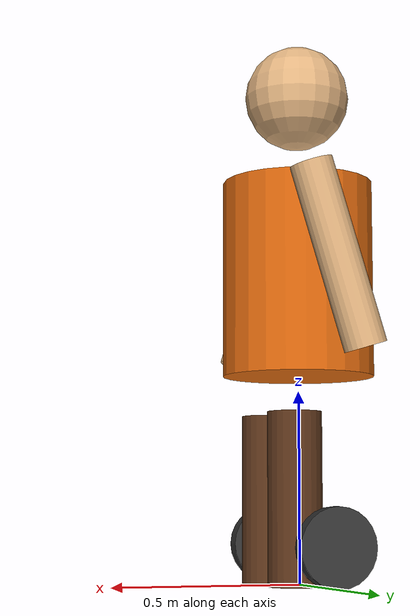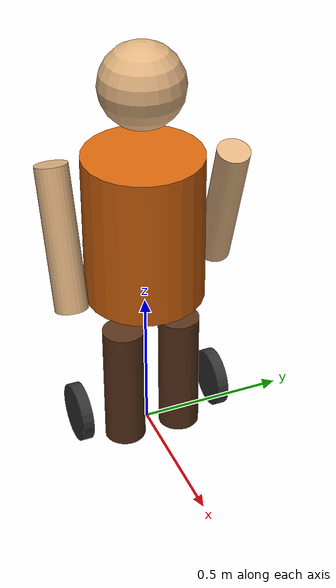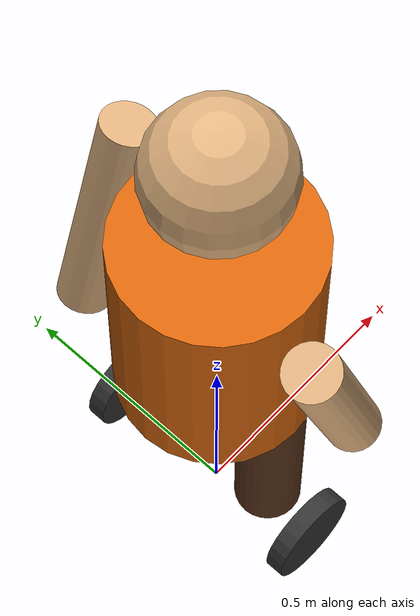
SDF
<?xml version="1.0"?>
<sdf version="1.10">
<model name="random_person">

  <link name="random_person">

    <inertial>
      <pose>0 0 0.90 0 0 0</pose>
      <mass>70.0</mass>
      <inertia>
        <ixx>10.0</ixx><iyy>10.0</iyy><izz>1.5</izz>
        <ixy>0</ixy><ixz>0</ixz><iyz>0</iyz>
      </inertia>
    </inertial>

    <collision name="body_col">
      <pose>0 0 0.90 0 0 0</pose>
      <geometry>
        <cylinder><radius>0.22</radius><length>1.4</length></cylinder>
      </geometry>
    </collision>

    <!-- Torso (orange) -->
    <visual name="torso_vis">
      <pose>0 0 0.80 0 0 0</pose>
      <geometry><cylinder><radius>0.20</radius><length>0.52</length></cylinder></geometry>
      <material><ambient>0.85 0.40 0.05 1</ambient><diffuse>0.85 0.40 0.05 1</diffuse></material>
    </visual>

    <!-- Legs (dark brown) -->
    <visual name="left_leg_vis">
      <pose>0.05 0.10 0.22 0 0 0</pose>
      <geometry><cylinder><radius>0.07</radius><length>0.44</length></cylinder></geometry>
      <material><ambient>0.35 0.20 0.10 1</ambient><diffuse>0.35 0.20 0.10 1</diffuse></material>
    </visual>
    <visual name="right_leg_vis">
      <pose>0.05 -0.10 0.22 0 0 0</pose>
      <geometry><cylinder><radius>0.07</radius><length>0.44</length></cylinder></geometry>
      <material><ambient>0.35 0.20 0.10 1</ambient><diffuse>0.35 0.20 0.10 1</diffuse></material>
    </visual>

    <!-- Arms -->
    <visual name="left_arm_vis">
      <pose>0 0.28 0.82 0 0.3 0</pose>
      <geometry><cylinder><radius>0.055</radius><length>0.48</length></cylinder></geometry>
      <material><ambient>0.88 0.70 0.50 1</ambient><diffuse>0.88 0.70 0.50 1</diffuse></material>
    </visual>
    <visual name="right_arm_vis">
      <pose>0 -0.28 0.82 0 -0.3 0</pose>
      <geometry><cylinder><radius>0.055</radius><length>0.48</length></cylinder></geometry>
      <material><ambient>0.88 0.70 0.50 1</ambient><diffuse>0.88 0.70 0.50 1</diffuse></material>
    </visual>

    <!-- Head (skin) -->
    <visual name="head_vis">
      <pose>0 0 1.30 0 0 0</pose>
      <geometry><sphere><radius>0.14</radius></sphere></geometry>
      <material><ambient>0.88 0.70 0.50 1</ambient><diffuse>0.88 0.70 0.50 1</diffuse></material>
    </visual>

  </link>

  <!-- ──────────────────────────────────────────────────────────────────────
       DRIVE WHEELS
  ────────────────────────────────────────────────────────────────────────── -->
  <link name="left_wheel">
    <pose>0 0.25 0.10 1.5708 0 0</pose>
    <inertial>
      <mass>1.0</mass>
      <inertia><ixx>0.0025</ixx><iyy>0.0025</iyy><izz>0.005</izz>
               <ixy>0</ixy><ixz>0</ixz><iyz>0</iyz></inertia>
    </inertial>
    <collision name="col">
      <geometry><cylinder><radius>0.10</radius><length>0.04</length></cylinder></geometry>
      <surface><friction><ode><mu>1.0</mu><mu2>1.0</mu2></ode></friction></surface>
    </collision>
    <visual name="vis">
      <geometry><cylinder><radius>0.10</radius><length>0.04</length></cylinder></geometry>
      <material><ambient>0.2 0.2 0.2 1</ambient><diffuse>0.2 0.2 0.2 1</diffuse></material>
    </visual>
  </link>

  <link name="right_wheel">
    <pose>0 -0.25 0.10 1.5708 0 0</pose>
    <inertial>
      <mass>1.0</mass>
      <inertia><ixx>0.0025</ixx><iyy>0.0025</iyy><izz>0.005</izz>
               <ixy>0</ixy><ixz>0</ixz><iyz>0</iyz></inertia>
    </inertial>
    <collision name="col">
      <geometry><cylinder><radius>0.10</radius><length>0.04</length></cylinder></geometry>
      <surface><friction><ode><mu>1.0</mu><mu2>1.0</mu2></ode></friction></surface>
    </collision>
    <visual name="vis">
      <geometry><cylinder><radius>0.10</radius><length>0.04</length></cylinder></geometry>
      <material><ambient>0.2 0.2 0.2 1</ambient><diffuse>0.2 0.2 0.2 1</diffuse></material>
    </visual>
  </link>

  <link name="caster_front">
    <pose>0.20 0 0.10 0 0 0</pose>
    <inertial><mass>0.5</mass>
      <inertia><ixx>0.002</ixx><iyy>0.002</iyy><izz>0.002</izz>
               <ixy>0</ixy><ixz>0</ixz><iyz>0</iyz></inertia>
    </inertial>
    <collision name="col">
      <geometry><sphere><radius>0.10</radius></sphere></geometry>
      <surface><friction><ode><mu>0.01</mu><mu2>0.01</mu2></ode></friction></surface>
    </collision>
  </link>

  <link name="caster_rear">
    <pose>-0.20 0 0.10 0 0 0</pose>
    <inertial><mass>0.5</mass>
      <inertia><ixx>0.002</ixx><iyy>0.002</iyy><izz>0.002</izz>
               <ixy>0</ixy><ixz>0</ixz><iyz>0</iyz></inertia>
    </inertial>
    <collision name="col">
      <geometry><sphere><radius>0.10</radius></sphere></geometry>
      <surface><friction><ode><mu>0.01</mu><mu2>0.01</mu2></ode></friction></surface>
    </collision>
  </link>

  <!-- ──────────────────────────────────────────────────────────────────────
       JOINTS
  ────────────────────────────────────────────────────────────────────────── -->
  <joint name="left_wheel_joint" type="revolute">
    <parent>random_person</parent><child>left_wheel</child>
    <axis>
      <xyz>0 0 -1</xyz>
      <limit><lower>-1e16</lower><upper>1e16</upper></limit>
      <dynamics><damping>0.01</damping><friction>0.01</friction></dynamics>
    </axis>
  </joint>

  <joint name="right_wheel_joint" type="revolute">
    <parent>random_person</parent><child>right_wheel</child>
    <axis>
      <xyz>0 0 -1</xyz>
      <limit><lower>-1e16</lower><upper>1e16</upper></limit>
      <dynamics><damping>0.01</damping><friction>0.01</friction></dynamics>
    </axis>
  </joint>

  <joint name="caster_front_joint" type="fixed">
    <parent>random_person</parent><child>caster_front</child>
  </joint>

  <joint name="caster_rear_joint" type="fixed">
    <parent>random_person</parent><child>caster_rear</child>
  </joint>

  <!-- ──────────────────────────────────────────────────────────────────────
       PLUGINS
  ────────────────────────────────────────────────────────────────────────── -->
  <plugin filename="gz-sim-diff-drive-system"
          name="gz::sim::systems::DiffDrive">
    <left_joint>left_wheel_joint</left_joint>
    <right_joint>right_wheel_joint</right_joint>
    <wheel_separation>0.50</wheel_separation>
    <wheel_radius>0.10</wheel_radius>
    <max_linear_velocity>1.0</max_linear_velocity>
    <max_angular_velocity>2.0</max_angular_velocity>
    <max_linear_acceleration>1.5</max_linear_acceleration>
    <max_angular_acceleration>5.0</max_angular_acceleration>
    <odom_publish_frequency>10</odom_publish_frequency>
    <topic>random_person/cmd_vel</topic>
    <odom_topic>random_person/odom</odom_topic>
    <frame_id>odom</frame_id>
    <child_frame_id>random_person</child_frame_id>
  </plugin>

  <plugin filename="gz-sim-joint-state-publisher-system"
          name="gz::sim::systems::JointStatePublisher">
    <topic>random_person/joint_states</topic>
  </plugin>

</model>
</sdf>
